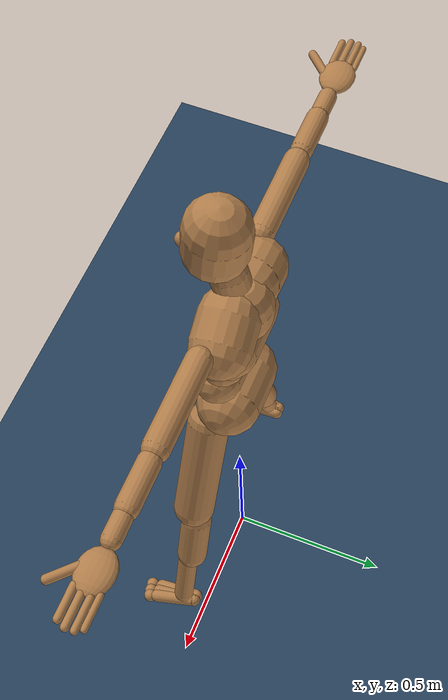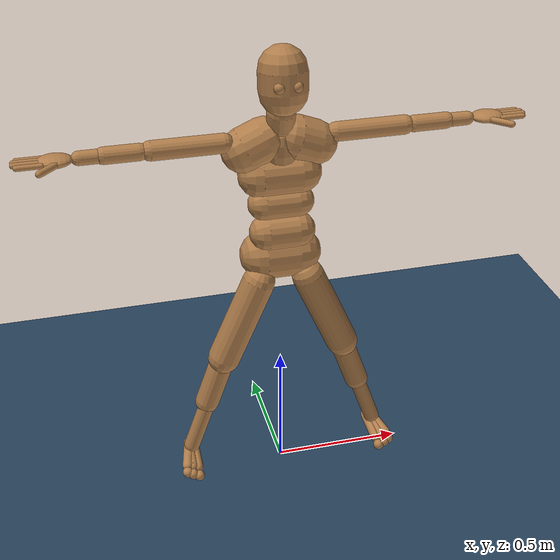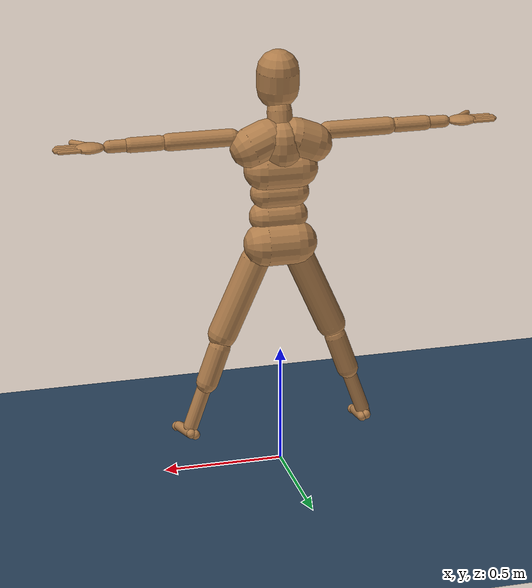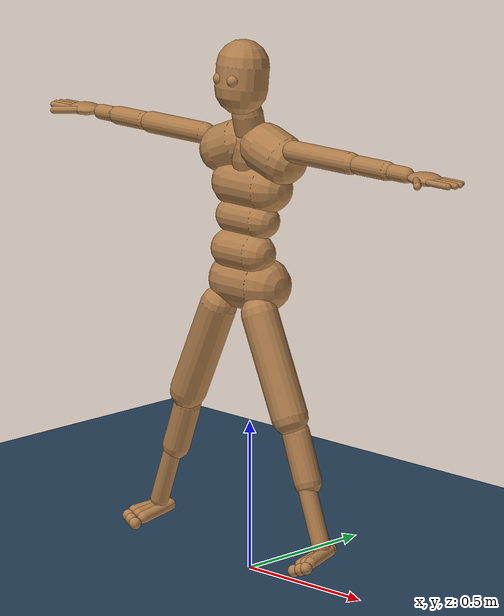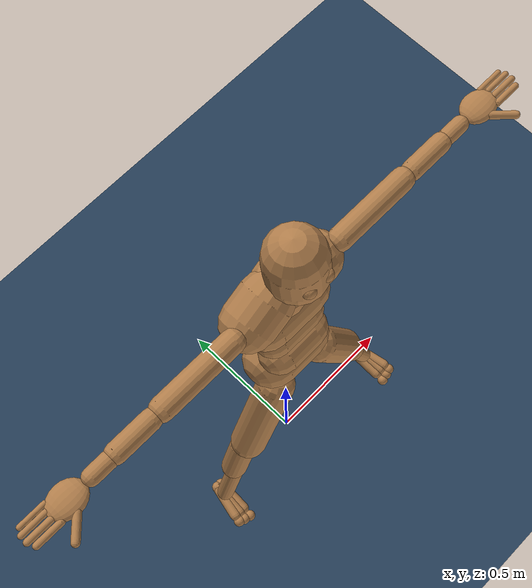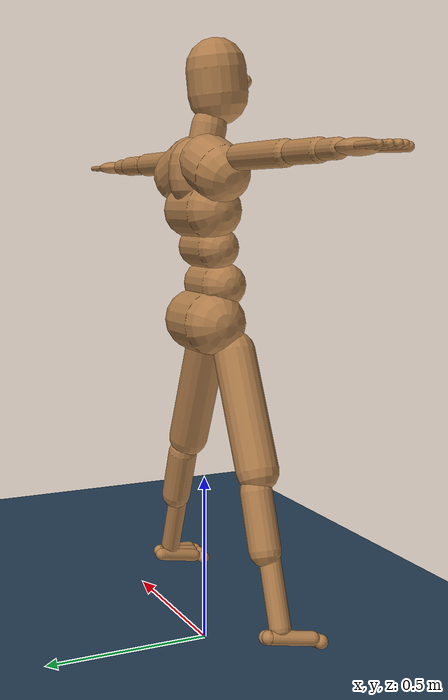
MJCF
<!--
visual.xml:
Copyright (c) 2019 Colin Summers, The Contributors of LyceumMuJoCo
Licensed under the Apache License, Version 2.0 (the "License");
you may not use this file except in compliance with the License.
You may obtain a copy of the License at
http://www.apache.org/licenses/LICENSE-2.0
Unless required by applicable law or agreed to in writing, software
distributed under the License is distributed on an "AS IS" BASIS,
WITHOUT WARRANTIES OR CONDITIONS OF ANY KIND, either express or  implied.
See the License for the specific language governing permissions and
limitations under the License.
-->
<mujoco model="humanoid">

  <include file="./common/skybox.xml" />
  <include file="./common/visual.xml" />
  <include file="./common/materials.xml" />

  <statistic extent="2" center="0 0 1" />

  <default class="main">
    <joint limited="true" solimplimit="0 0.99 0.01" stiffness="0.1" armature=".01" damping="1" />
    <geom friction="0.7" solref="0.015 1" solimp="0.95 0.99 0.003" />
    <motor ctrllimited="true" ctrlrange="-1 1" />
    <default class="humanoid">
      <geom type="capsule" material="self" />
      <default class="stiff_low">
        <joint stiffness=".5" damping="4" />
      </default>
      <default class="stiff_medium">
        <joint stiffness="10" damping="5" />
      </default>
      <default class="stiff_high">
        <joint stiffness="30" damping="10" />
      </default>
      <default class="touch">
        <site group="3" rgba="0 0 1 .5" />
      </default>
    </default>
  </default>

  <worldbody>
    <geom name="floor" type="plane" conaffinity="1" size="102.07957998604313 102.07957998604313 0.20415915997208628" material="grid" />
    <light name="tracking_light" pos="0 0 7" dir="0 0 -1" mode="trackcom" />
    <camera name="back" pos="0 3 2.4" xyaxes="-1 0 0 0 -1 2" mode="trackcom" />
    <camera name="side" pos="-3 0 2.4" xyaxes="0 -1 0 1 0 2" mode="trackcom" />
    <body name="root" childclass="humanoid" pos="0.0 0.0 1.0207957998604313" euler="90 0 0">

      <freejoint name="root" />
      <geom name="root_geom" size="0.09187162198743881 0.06124774799162588" pos="0.0 -0.05103978999302157 0.0" quat="1 0 -1 0" mass="8.8725" />
      <body name="lhipjoint" pos="0.0 0.0 0.0">
        <geom name="lhipjoint" size="0.00816636639888345 0.022457507596929487" pos="0.052060585792881996 -0.04695660679357984 0.025519894996510785" quat="0.5708 -0.566602 -0.594264 0" />
        <body name="lfemur" pos="0.10412117158576399 -0.09391321358715968 0.05103978999302157" quat="1 0 0 0.17365">
          <joint name="lfemur_z" axis="0 0 1" range="-60 70" class="stiff_medium" pos="0.0 0.0 0.0" />
          <joint name="lfemur_y" axis="0 1 0" range="-70 70" class="stiff_medium" pos="0.0 0.0 0.0" />
          <joint name="lfemur_x" axis="1 0 0" range="-160 20" class="stiff_medium" pos="0.0 0.0 0.0" />
          <geom name="lfemur" size="0.06124774799162588 0.17353528597627335" pos="-0.010207957998604314 -0.2066835879851411 0.0" quat="0.7 -0.7 -0.1228 -0.07" mass="10.8525" />
          <body name="ltibia" pos="0.0 -0.4133661551744824 0.0">
            <joint name="ltibia_x" axis="1 0 0" range="1   170" class="stiff_low" pos="0.0 0.0 0.0" />
            <geom name="ltibia" size="0.03062387399581294 0.18635791033664018" pos="0.0 -0.20706434481848907 0.0" quat="0.7 -0.7 -0.1228 -0.1228" mass="3.4274999999999998" />
            <geom name="lcalf" size="0.045935810993719406 0.08166366398883451" pos="0.0 -0.10207957998604314 -0.010207957998604314" quat="0.7 -0.7 -0.1228 -0.1228" />
            <body name="lfoot" pos="0.0 -0.414129710432778 0.0" quat="0.707107 -0.707107 0 0">

              <joint name="lfoot_z" axis="0 0 1" range="-70 20" class="stiff_medium" pos="0.0 0.0 0.0" />
              <joint name="lfoot_x" axis="1 0 0" range="-45    90" class="stiff_medium" pos="0.0 0.0 0.0" />
              <geom name="lfoot0" size="0.020415915997208628 0.06124774799162588" pos="-0.020415915997208628 -0.02347830339678992 -0.010207957998604314" euler="100 -2 0" mass="0.9974999999999999" />
              <geom name="lfoot1" size="0.020415915997208628 0.06124774799162588" pos="0.0 -0.02347830339678992 -0.010207957998604314" euler="100 0 0" />
              <geom name="lfoot2" size="0.020415915997208628 0.06124774799162588" pos="0.010207957998604314 -0.02347830339678992 -0.010207957998604314" euler="100 10 0" />
              <body name="ltoes" pos="0.0 -0.1085840908227538 -0.02324923681930124">
                <joint name="ltoes_x" axis="1 0 0" range="-90 20" pos="0.0 0.0 0.0" />
                <geom name="ltoes0" type="sphere" size="0.020415915997208628" pos="-0.025519894996510785 -0.010207957998604314 -0.010207957998604314" />
                <geom name="ltoes1" type="sphere" size="0.020415915997208628" pos="0.0 -0.005103978999302157 -0.010207957998604314" />
                <geom name="ltoes2" type="sphere" size="0.020415915997208628" pos="0.020415915997208628 0.0010207957998604313 -0.010207957998604314" />

              </body>
            </body>
          </body>
        </body>
      </body>
      <body name="rhipjoint" pos="0.0 0.0 0.0">
        <geom name="rhipjoint" size="0.00816636639888345 0.022457507596929487" pos="-0.052060585792881996 -0.04695660679357984 0.025519894996510785" quat="0.574856 -0.547594 0.608014 0" />
        <body name="rfemur" pos="-0.10412117158576399 -0.09391321358715968 0.05103978999302157" quat="1 0 0 -0.17365">
          <joint name="rfemur_z" axis="0 0 1" range="-70 60" class="stiff_medium" pos="0.0 0.0 0.0" />
          <joint name="rfemur_y" axis="0 1 0" range="-70 70" class="stiff_medium" pos="0.0 0.0 0.0" />
          <joint name="rfemur_x" axis="1 0 0" range="-160 20" class="stiff_medium" pos="0.0 0.0 0.0" />
          <geom name="rfemur" size="0.06124774799162588 0.17353528597627335" pos="0.010207957998604314 -0.2066835879851411 0.0" quat="0.7 -0.7 0.1228 0.07" mass="10.8525" />
          <body name="rtibia" pos="0.0 -0.4133661551744824 0.0">
            <joint name="rtibia_x" axis="1 0 0" range="1   170" class="stiff_low" pos="0.0 0.0 0.0" />
            <geom name="rtibia" size="0.03062387399581294 0.18635791033664018" pos="0.0 -0.20706434481848907 0.0" quat="0.7 -0.7 0.1228 0.1228" mass="3.4274999999999998" />
            <geom name="rcalf" size="0.045935810993719406 0.08166366398883451" pos="0.0 -0.10207957998604314 -0.010207957998604314" quat="0.7 -0.7 -0.1228 -0.1228" />
            <body name="rfoot" pos="0.0 -0.414129710432778 0.0" quat="0.707107 -0.707107 0 0">

              <joint name="rfoot_z" axis="0 0 1" range="-20 70" class="stiff_medium" pos="0.0 0.0 0.0" />
              <joint name="rfoot_x" axis="1 0 0" range="-45    90" class="stiff_medium" pos="0.0 0.0 0.0" />
              <geom name="rfoot0" size="0.020415915997208628 0.06124774799162588" pos="0.020415915997208628 -0.02347830339678992 -0.010207957998604314" euler="100 2 0" mass="0.9974999999999999" />
              <geom name="rfoot1" size="0.020415915997208628 0.06124774799162588" pos="0.0 -0.02347830339678992 -0.010207957998604314" euler="100 0 0" />
              <geom name="rfoot2" size="0.020415915997208628 0.06124774799162588" pos="-0.010207957998604314 -0.02347830339678992 -0.010207957998604314" euler="100 -10 0" />
              <body name="rtoes" pos="0.0 -0.1085840908227538 -0.02324923681930124">
                <joint name="rtoes_x" axis="1 0 0" range="-90 20" pos="0.0 0.0 0.0" />
                <geom name="rtoes0" type="sphere" size="0.020415915997208628" pos="0.025519894996510785 -0.010207957998604314 -0.010207957998604314" />
                <geom name="rtoes1" type="sphere" size="0.020415915997208628" pos="0.0 -0.005103978999302157 -0.010207957998604314" />
                <geom name="rtoes2" type="sphere" size="0.020415915997208628" pos="-0.020415915997208628 0.0010207957998604313 -0.010207957998604314" />

              </body>
            </body>
          </body>
        </body>
      </body>
      <body name="lowerback" pos="0.0 0.0 0.0">
        <joint name="lowerback_z" axis="0 0 1" range="-30 30" class="stiff_high" pos="0.0 0.0 0.0" />
        <joint name="lowerback_y" axis="0 1 0" range="-30 30" class="stiff_high" pos="0.0 0.0 0.0" />
        <joint name="lowerback_x" axis="1 0 0" range="-20 45" class="stiff_high" pos="0.0 0.0 0.0" />
        <geom name="lowerback" size="0.06635172699092803 0.05614376899232373" pos="0.0 0.05716456479218416 0.03062387399581294" quat="1 0 1 0" />
        <body name="upperback" pos="0.0 0.10207957998604314 -0.010207957998604314">
          <joint name="upperback_z" axis="0 0 1" range="-30 30" class="stiff_high" pos="0.0 0.0 0.0" />
          <joint name="upperback_y" axis="0 1 0" range="-30 30" class="stiff_high" pos="0.0 0.0 0.0" />
          <joint name="upperback_x" axis="1 0 0" range="-20 45" class="stiff_high" pos="0.0 0.0 0.0" />
          <geom name="upperback" size="0.06124774799162588 0.06124774799162588" pos="0.0 0.06124774799162588 0.020415915997208628" quat="1 0 1 0" mass="3.9225" />
          <body name="thorax" pos="0.0005231864297108672 0.11592157103215057 0.0009563029420210492">
            <joint name="thorax_z" axis="0 0 1" range="-30 30" class="stiff_high" pos="0.0 0.0 0.0" />
            <joint name="thorax_y" axis="0 1 0" range="-30 30" class="stiff_high" pos="0.0 0.0 0.0" />
            <joint name="thorax_x" axis="1 0 0" range="-20 45" class="stiff_high" pos="0.0 0.0 0.0" />
            <geom name="thorax" size="0.08166366398883451 0.0714557059902302" pos="0.0 0.05103978999302157 0.0" quat="1 0 1 0" mass="11.617500000000001" />
            <body name="lowerneck" pos="0.0 0.11631457741509685 0.004777702037792766">
              <joint name="lowerneck_z" axis="0 0 1" range="-30 30" class="stiff_medium" pos="0.0 0.0 0.0" />
              <joint name="lowerneck_y" axis="0 1 0" range="-30 30" class="stiff_medium" pos="0.0 0.0 0.0" />
              <joint name="lowerneck_x" axis="1 0 0" range="-20 45" class="stiff_medium" pos="0.0 0.0 0.0" />
              <geom name="lowerneck" size="0.08166366398883451 0.020415915997208628" pos="0.0 0.040831831994417256 -0.020415915997208628" quat="1 1 0 0" mass="5.1075" />
              <body name="upperneck" pos="0.0 0.09187162198743881 0.010207957998604314">
                <joint name="upperneck_z" axis="0 0 1" range="-30 30" class="stiff_medium" pos="0.0 0.0 0.0" />
                <joint name="upperneck_y" axis="0 1 0" range="-30 30" class="stiff_medium" pos="0.0 0.0 0.0" />
                <joint name="upperneck_x" axis="1 0 0" range="-20 45" class="stiff_medium" pos="0.0 0.0 0.0" />
                <geom name="upperneck" size="0.05103978999302157 0.03062387399581294" pos="0.0 0.05103978999302157 0.0" quat=".8 1 0 0" />
                <body name="head" pos="0.0 0.09187162198743881 0.0">
                  <camera name="egocentric" pos="0 0 0" xyaxes="-1 0 0 0 1 0" fovy="80" />
                  <joint name="head_z" axis="0 0 1" range="-30 30" class="stiff_medium" pos="0.0 0.0 0.0" />
                  <joint name="head_y" axis="0 1 0" range="-30 30" class="stiff_medium" pos="0.0 0.0 0.0" />
                  <joint name="head_x" axis="1 0 0" range="-20 45" class="stiff_medium" pos="0.0 0.0 0.0" />
                  <geom name="head" size="0.08676764298813668 0.0357278529951151" pos="0.0 0.11228753798464745 0.03062387399581294" quat="1 .9 0 0" />
                  <geom name="leye" type="sphere" size="0.020415915997208628" pos="0.03062387399581294 0.11228753798464745 0.10207957998604314" />
                  <geom name="reye" type="sphere" size="0.020415915997208628" pos="-0.03062387399581294 0.11228753798464745 0.10207957998604314" />
                </body>
              </body>
            </body>
            <body name="lclavicle" pos="0.0 0.11631457741509685 0.004777702037792766">
              <joint name="lclavicle_z" axis="0 0 1" range="0 20" class="stiff_high" pos="0.0 0.0 0.0" />
              <joint name="lclavicle_y" axis="0 1 0" range="-20 10" class="stiff_high" pos="0.0 0.0 0.0" />
              <geom name="lclavicle" size="0.08166366398883451 0.040831831994417256" pos="0.09187162198743881 0.05103978999302157 -0.010207957998604314" quat="1 0 -1 -.4" mass="3.9225" />
              <body name="lhumerus" pos="0.18680563137445894 0.07758048078939278 0.010207957998604314" quat="0.18 0.68 -0.68 0.18">
                <joint name="lhumerus_z" axis="0 0 1" range="-90 90" class="stiff_low" pos="0.0 0.0 0.0" />
                <joint name="lhumerus_y" axis="0 1 0" range="-90 90" class="stiff_low" pos="0.0 0.0 0.0" />
                <joint name="lhumerus_x" axis="1 0 0" range="-60 90" class="stiff_low" pos="0.0 0.0 0.0" />
                <geom name="lhumerus" size="0.0357278529951151 0.1265786791826935" pos="0.0 -0.14086982038073953 0.0" quat="0.612 -0.612 0.35 0.35" mass="1.9725000000000001" />
                <body name="lradius" pos="0.0 -0.2827604365613395 0.0">
                  <joint name="lradius_x" axis="1 0 0" range="-10 170" class="stiff_low" pos="0.0 0.0 0.0" />
                  <geom name="lradius" size="0.03062387399581294 0.06124774799162588" pos="0.0 -0.08166366398883451 0.0" quat="0.612 -0.612 0.35 0.35" mass="1.125" />
                  <body name="lwrist" pos="0.0 -0.17353528597627335 0.0" quat="-0.5 0 0.866 0">
                    <joint name="lwrist_y" axis="0 1 0" range="-180 0" pos="0.0 0.0 0.0" />
                    <geom name="lwrist" size="0.025519894996510785 0.03062387399581294" pos="0.0 -0.020415915997208628 0.0" quat="0 0 -1 -1" mass="0.4425" />
                    <body name="lhand" pos="0.0 -0.08166366398883451 0.0">
                      <joint name="lhand_z" axis="0 0 1" range="-45 45" pos="0.0 0.0 0.0" />
                      <joint name="lhand_x" axis="1 0 0" range="-90 90" pos="0.0 0.0 0.0" />
                      <geom name="lhand" type="ellipsoid" size="0.048998198393300704 0.020415915997208628 0.06124774799162588" pos="0.0 -0.04797740259344027 0.0" quat="0 0 -1 -1" />
                      <body name="lfingers" pos="0.0 -0.08166366398883451 0.0">
                        <joint name="lfingers_x" axis="1 0 0" range="0 90" pos="0.0 0.0 0.0" />
                        <geom name="lfinger0" size="0.010207957998604314 0.040831831994417256" pos="-0.03062387399581294 -0.05103978999302157 0.0" quat="1 -1 0 0" />
                        <geom name="lfinger1" size="0.010207957998604314 0.040831831994417256" pos="-0.00816636639888345 -0.06124774799162588 0.0" quat="1 -1 0 0" />
                        <geom name="lfinger2" size="0.009187162198743881 0.040831831994417256" pos="0.01429114119804604 -0.06124774799162588 0.0" quat="1 -1 0 0" />
                        <geom name="lfinger3" size="0.00816636639888345 0.040831831994417256" pos="0.0326654655955338 -0.05103978999302157 0.0" quat="1 -1 0 0" />
                      </body>
                      <body name="lthumb" pos="-0.020415915997208628 -0.03062387399581294 0.0" quat="0.92388 0 0 -0.382683">
                        <joint name="lthumb_z" axis="0 0 1" range="-45 45" pos="0.0 0.0 0.0" />
                        <joint name="lthumb_x" axis="1 0 0" range="0 90" pos="0.0 0.0 0.0" />
                        <geom name="lthumb" size="0.012249549598325176 0.040831831994417256" pos="0.0 -0.06124774799162588 0.0" quat="0 0 -1 -1" />
                      </body>
                    </body>
                  </body>
                </body>
              </body>
            </body>
            <body name="rclavicle" pos="0.0 0.11631457741509685 0.004777702037792766">
              <joint name="rclavicle_z" axis="0 0 1" range="-20 0" class="stiff_high" pos="0.0 0.0 0.0" />
              <joint name="rclavicle_y" axis="0 1 0" range="-10 20" class="stiff_high" pos="0.0 0.0 0.0" />
              <geom name="rclavicle" size="0.08166366398883451 0.040831831994417256" pos="-0.09187162198743881 0.05103978999302157 -0.010207957998604314" quat="1 0 -1 .4" mass="3.9225" />
              <body name="rhumerus" pos="-0.18680563137445894 0.07758048078939278 0.010207957998604314" quat="0.18 0.68 0.68 -0.18">
                <joint name="rhumerus_z" axis="0 0 1" range="-90 90" class="stiff_low" pos="0.0 0.0 0.0" />
                <joint name="rhumerus_y" axis="0 1 0" range="-90 90" class="stiff_low" pos="0.0 0.0 0.0" />
                <joint name="rhumerus_x" axis="1 0 0" range="-60 90" class="stiff_low" pos="0.0 0.0 0.0" />
                <geom name="rhumerus" size="0.0357278529951151 0.1265786791826935" pos="0.0 -0.14086982038073953 0.0" quat="0.61 -0.61 -0.35 -0.35" mass="1.9725000000000001" />
                <body name="rradius" pos="0.0 -0.2827604365613395 0.0">
                  <joint name="rradius_x" axis="1 0 0" range="-10 170" class="stiff_low" pos="0.0 0.0 0.0" />
                  <geom name="rradius" size="0.03062387399581294 0.06124774799162588" pos="0.0 -0.08166366398883451 0.0" quat="0.612 -0.612 -0.35 -0.35" mass="1.125" />
                  <body name="rwrist" pos="0.0 -0.17353528597627335 0.0" quat="-0.5 0 -0.866 0">
                    <joint name="rwrist_y" axis="0 1 0" range="-180 0" pos="0.0 0.0 0.0" />
                    <geom name="rwrist" size="0.025519894996510785 0.03062387399581294" pos="0.0 -0.020415915997208628 0.0" quat="0 0 1 1" mass="0.4425" />
                    <body name="rhand" pos="0.0 -0.08166366398883451 0.0">
                      <joint name="rhand_z" axis="0 0 1" range="-45 45" pos="0.0 0.0 0.0" />
                      <joint name="rhand_x" axis="1 0 0" range="-90 90" pos="0.0 0.0 0.0" />
                      <geom name="rhand" type="ellipsoid" size="0.048998198393300704 0.020415915997208628 0.06124774799162588" pos="0.0 -0.04797740259344027 0.0" quat="0 0 1 1" />
                      <body name="rfingers" pos="0.0 -0.08166366398883451 0.0">
                        <joint name="rfingers_x" axis="1 0 0" range="0 90" pos="0.0 0.0 0.0" />
                        <geom name="rfinger0" size="0.010207957998604314 0.040831831994417256" pos="0.03062387399581294 -0.05103978999302157 0.0" quat="1 -1  0 0" />
                        <geom name="rfinger1" size="0.010207957998604314 0.040831831994417256" pos="0.00816636639888345 -0.06124774799162588 0.0" quat="1 -1  0 0" />
                        <geom name="rfinger2" size="0.009187162198743881 0.040831831994417256" pos="-0.01429114119804604 -0.06124774799162588 0.0" quat="1 -1  0 0" />
                        <geom name="rfinger3" size="0.00816636639888345 0.040831831994417256" pos="-0.0326654655955338 -0.05103978999302157 0.0" quat="1 -1  0 0" />
                      </body>
                      <body name="rthumb" pos="0.020415915997208628 -0.03062387399581294 0.0" quat="0.92388 0 0 0.382683">
                        <joint name="rthumb_z" axis="0 0 1" range="-45    45" pos="0.0 0.0 0.0" />
                        <joint name="rthumb_x" axis="1 0 0" range="0 90" pos="0.0 0.0 0.0" />
                        <geom name="rthumb" size="0.012249549598325176 0.040831831994417256" pos="0.0 -0.06124774799162588 0.0" quat="0 0 1 1" />
                      </body>
                    </body>
                  </body>
                </body>
              </body>
            </body>
          </body>
        </body>
      </body>
    </body>
  </worldbody>

  <contact>
    <exclude body1="lclavicle" body2="rclavicle" />
    <exclude body1="lowerneck" body2="lclavicle" />
    <exclude body1="lowerneck" body2="rclavicle" />
    <exclude body1="upperneck" body2="lclavicle" />
    <exclude body1="upperneck" body2="rclavicle" />
  </contact>

  <actuator>
    <motor name="head_x" joint="head_x" gear="20" />
    <motor name="head_y" joint="head_y" gear="20" />
    <motor name="head_z" joint="head_z" gear="20" />
    <motor name="lclavicle_y" joint="lclavicle_y" gear="20" />
    <motor name="lclavicle_z" joint="lclavicle_z" gear="20" />
    <motor name="lfemur_x" joint="lfemur_x" gear="120" />
    <motor name="lfemur_y" joint="lfemur_y" gear="40" />
    <motor name="lfemur_z" joint="lfemur_z" gear="40" />
    <motor name="lfingers_x" joint="lfingers_x" gear="20" />
    <motor name="lfoot_x" joint="lfoot_x" gear="20" />
    <motor name="lfoot_z" joint="lfoot_z" gear="20" />
    <motor name="lhand_x" joint="lhand_x" gear="20" />
    <motor name="lhand_z" joint="lhand_z" gear="20" />
    <motor name="lhumerus_x" joint="lhumerus_x" gear="40" />
    <motor name="lhumerus_y" joint="lhumerus_y" gear="40" />
    <motor name="lhumerus_z" joint="lhumerus_z" gear="40" />
    <motor name="lowerback_x" joint="lowerback_x" gear="40" />
    <motor name="lowerback_y" joint="lowerback_y" gear="40" />
    <motor name="lowerback_z" joint="lowerback_z" gear="40" />
    <motor name="lowerneck_x" joint="lowerneck_x" gear="20" />
    <motor name="lowerneck_y" joint="lowerneck_y" gear="20" />
    <motor name="lowerneck_z" joint="lowerneck_z" gear="20" />
    <motor name="lradius_x" joint="lradius_x" gear="40" />
    <motor name="lthumb_x" joint="lthumb_x" gear="20" />
    <motor name="lthumb_z" joint="lthumb_z" gear="20" />
    <motor name="ltibia_x" joint="ltibia_x" gear="80" />
    <motor name="ltoes_x" joint="ltoes_x" gear="20" />
    <motor name="lwrist_y" joint="lwrist_y" gear="20" />
    <motor name="rclavicle_y" joint="rclavicle_y" gear="20" />
    <motor name="rclavicle_z" joint="rclavicle_z" gear="20" />
    <motor name="rfemur_x" joint="rfemur_x" gear="120" />
    <motor name="rfemur_y" joint="rfemur_y" gear="40" />
    <motor name="rfemur_z" joint="rfemur_z" gear="40" />
    <motor name="rfingers_x" joint="rfingers_x" gear="20" />
    <motor name="rfoot_x" joint="rfoot_x" gear="20" />
    <motor name="rfoot_z" joint="rfoot_z" gear="20" />
    <motor name="rhand_x" joint="rhand_x" gear="20" />
    <motor name="rhand_z" joint="rhand_z" gear="20" />
    <motor name="rhumerus_x" joint="rhumerus_x" gear="40" />
    <motor name="rhumerus_y" joint="rhumerus_y" gear="40" />
    <motor name="rhumerus_z" joint="rhumerus_z" gear="40" />
    <motor name="rradius_x" joint="rradius_x" gear="40" />
    <motor name="rthumb_x" joint="rthumb_x" gear="20" />
    <motor name="rthumb_z" joint="rthumb_z" gear="20" />
    <motor name="rtibia_x" joint="rtibia_x" gear="80" />
    <motor name="rtoes_x" joint="rtoes_x" gear="20" />
    <motor name="rwrist_y" joint="rwrist_y" gear="20" />
    <motor name="thorax_x" joint="thorax_x" gear="40" />
    <motor name="thorax_y" joint="thorax_y" gear="40" />
    <motor name="thorax_z" joint="thorax_z" gear="40" />
    <motor name="upperback_x" joint="upperback_x" gear="40" />
    <motor name="upperback_y" joint="upperback_y" gear="40" />
    <motor name="upperback_z" joint="upperback_z" gear="40" />
    <motor name="upperneck_x" joint="upperneck_x" gear="20" />
    <motor name="upperneck_y" joint="upperneck_y" gear="20" />
    <motor name="upperneck_z" joint="upperneck_z" gear="20" />
  </actuator>

  <sensor>
    <subtreelinvel name="thorax_subtreelinvel" body="thorax" />

  </sensor>

</mujoco>

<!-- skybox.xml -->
<!--
Copyright 2017 The dm_control Authors.
-->
<mujoco>
  <asset>
      <texture name="skybox" type="skybox" builtin="gradient" rgb1=".4 .6 .8" rgb2="0 0 0"
               width="800" height="800" mark="random" markrgb="1 1 1"/>
  </asset>
</mujoco>

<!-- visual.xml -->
<mujoco>
  <visual>
    <headlight ambient=".4 .4 .4" diffuse=".8 .8 .8" specular="0.1 0.1 0.1"/>
    <map znear=".01"/>
    <quality shadowsize="2048"/>
  </visual>
</mujoco>

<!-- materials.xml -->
<!--
Common textures, colors and materials to be used throughout this suite. Some
materials such as xxx_highlight are activated on occurence of certain events,
for example receiving a positive reward.
-->
<mujoco>
  <asset>
    <texture name="grid" type="2d" builtin="checker" rgb1=".1 .2 .3" rgb2=".2 .3 .4" width="300" height="300" mark="edge" markrgb=".2 .3 .4"/>
    <material name="grid" texture="grid" texrepeat="1 1" texuniform="true" reflectance=".2"/>
    <material name="self" rgba=".7 .5 .3 1"/>
    <material name="self_default" rgba=".7 .5 .3 1"/>
    <material name="self_highlight" rgba="0 .5 .3 1"/>
    <material name="effector" rgba=".7 .4 .2 1"/>
    <material name="effector_default" rgba=".7 .4 .2 1"/>
    <material name="effector_highlight" rgba="0 .5 .3 1"/>
    <material name="decoration" rgba=".3 .5 .7 1"/>
    <material name="eye" rgba="0 .2 1 1"/>
    <material name="target" rgba=".6 .3 .3 1"/>
    <material name="target_default" rgba=".6 .3 .3 1"/>
    <material name="target_highlight" rgba=".6 .3 .3 .4"/>
    <material name="site" rgba=".5 .5 .5 .3"/>
  </asset>
</mujoco>
